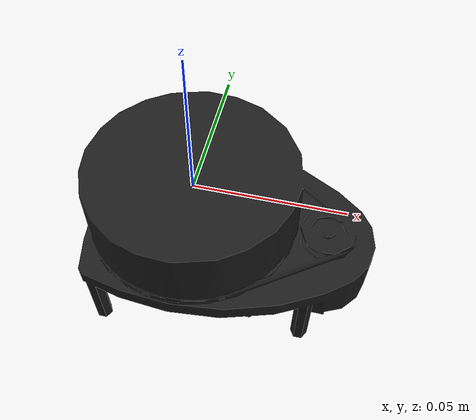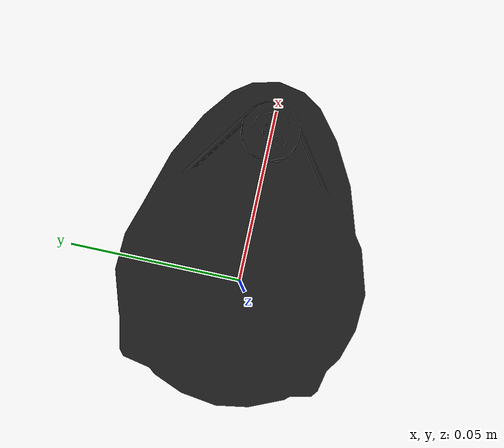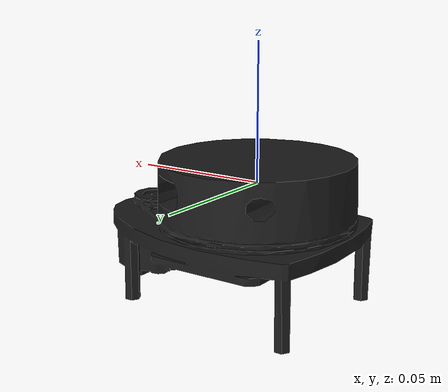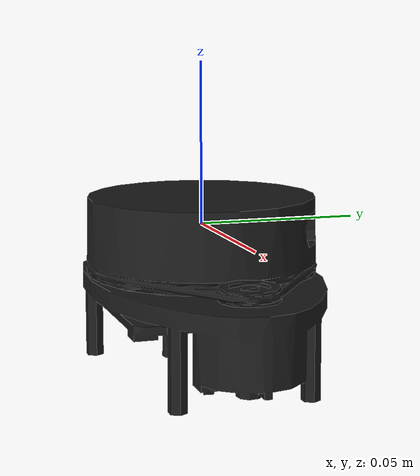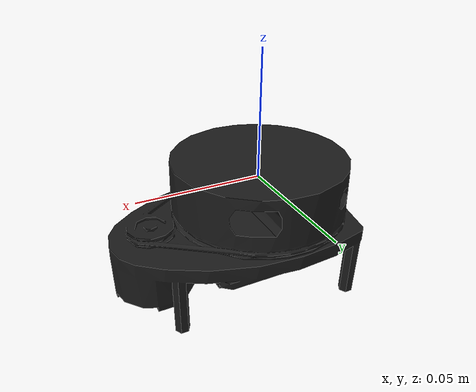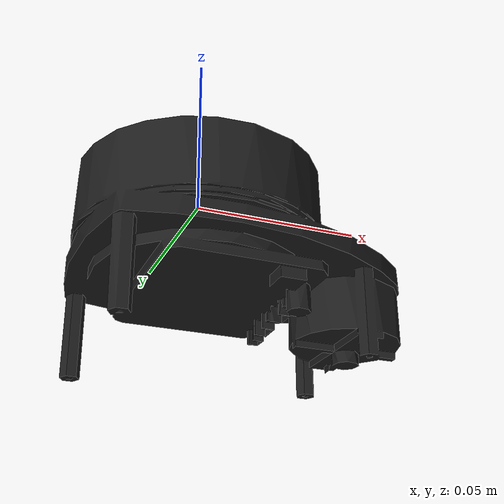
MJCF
<mujoco model="rplidar_a1">
  <compiler angle="radian" meshdir="meshes" autolimits="true"/>

  <asset>
    <material name="rplidar_mat" rgba="0.1098 0.1098 0.1098 1"/>
    <mesh name="rplidar" file="rplidar.obj"/>
  </asset>

  <worldbody>
    <body name="mount">
      <inertial pos="0 0 0" mass="0.17" diaginertia="0.00019267 0.00012241 0.00021308"/>
      <geom name="rplidar_a1_visual" type="mesh" mesh="rplidar" material="rplidar_mat"
            contype="0" conaffinity="0"/>
      <!-- The vendor's own collision box (7.1 x 10 x 6 cm). -->
      <geom name="rplidar_a1_collision" type="box" pos="0 0.013 -0.019" size="0.0355 0.05 0.03" group="3"/>
      <!-- The vendor scan frame (rplidar_link) is the mount itself.
           Keep in step with the manifest's `frames:` entry. -->
      <site name="scan" pos="0 0 0" size="0.005"/>
    </body>
  </worldbody>
</mujoco>
